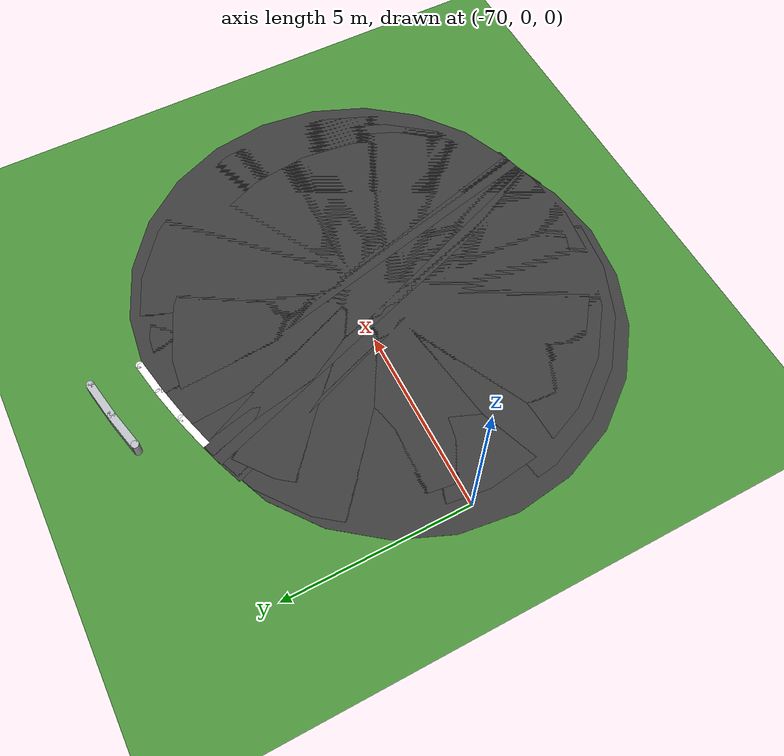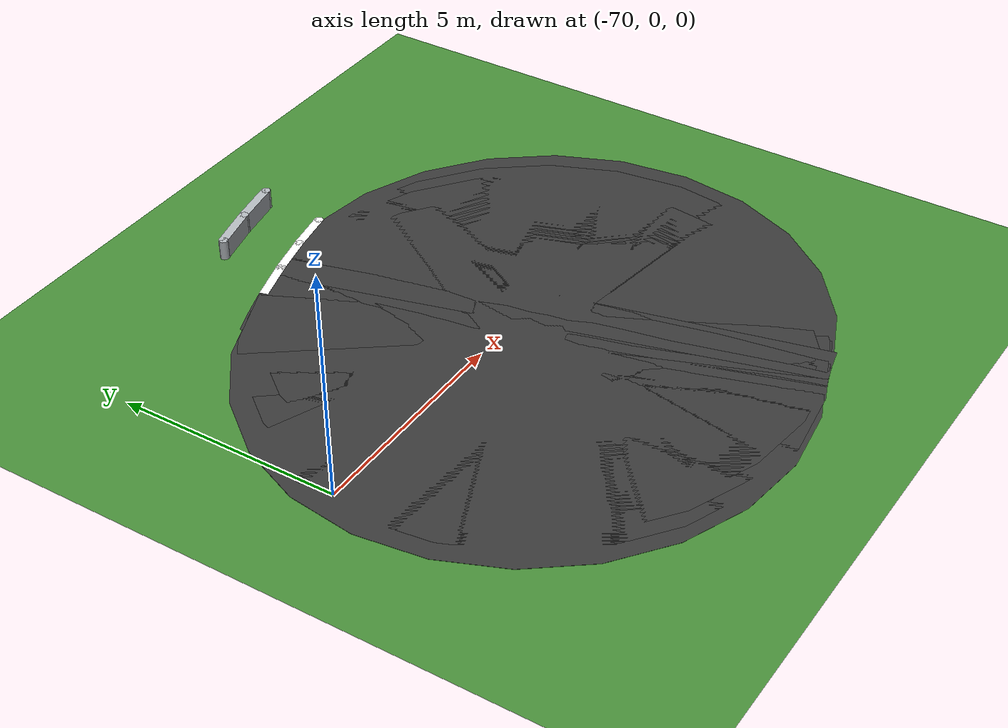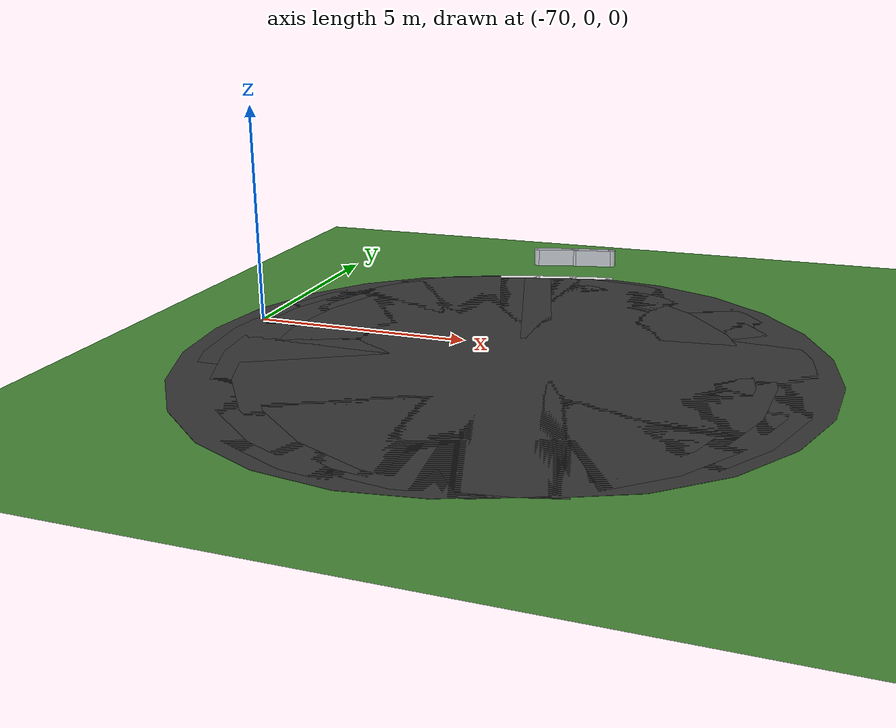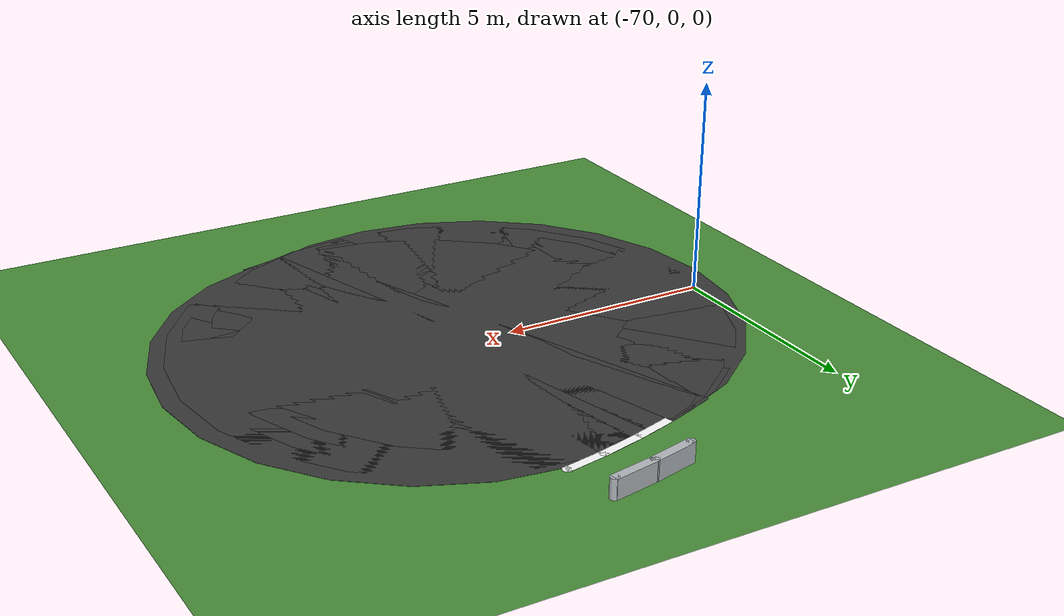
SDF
<sdf version="1.6">
 <world name="sem_silesia_ring_2026">
  <model name="ground_plane">
   <static>true</static>
   <link name="link">
    <collision name="collision">
     <geometry><plane><normal>0 0 1</normal><size>600 600</size></plane></geometry>
     <surface><friction><ode><mu>0.6</mu><mu2>0.6</mu2></ode></friction></surface>
    </collision>
    <visual name="visual">
     <geometry><plane><normal>0 0 1</normal><size>600 600</size></plane></geometry>
     <material><ambient>0.28 0.55 0.22 1</ambient><diffuse>0.28 0.55 0.22 1</diffuse></material>
    </visual>
   </link>
  </model>
  <model name="road_L_s6">
   <static>true</static>
   <pose>-62.8119 -0.3204 0.0030 0 0 3.3685</pose>
   <link name="link">
    <visual name="v">
     <geometry><box><size>0.6957 12.0000 0.0060</size></box></geometry>
     <material><ambient>0.22 0.22 0.22 1</ambient><diffuse>0.22 0.22 0.22 1</diffuse></material>
    </visual>
    <collision name="c">
     <geometry><box><size>0.6957 12.0000 0.0060</size></box></geometry>
     <surface><friction><ode><mu>0.9</mu><mu2>0.9</mu2></ode></friction></surface>
    </collision>
   </link>
  </model>
  <model name="road_L_jnt7">
   <static>true</static>
   <pose>-63.0240 -0.3713 0.0030 0 0 0</pose>
   <link name="link">
    <visual name="v">
     <geometry><cylinder><radius>6.0000</radius><length>0.0060</length></cylinder></geometry>
     <material><ambient>0.22 0.22 0.22 1</ambient><diffuse>0.22 0.22 0.22 1</diffuse></material>
    </visual>
    <collision name="c">
     <geometry><cylinder><radius>6.0000</radius><length>0.0060</length></cylinder></geometry>
     <surface><friction><ode><mu>0.9</mu><mu2>0.9</mu2></ode></friction></surface>
    </collision>
   </link>
  </model>
  <model name="road_L_s7">
   <static>true</static>
   <pose>-63.2352 -0.4259 0.0030 0 0 3.4034</pose>
   <link name="link">
    <visual name="v">
     <geometry><box><size>0.6957 12.0000 0.0060</size></box></geometry>
     <material><ambient>0.22 0.22 0.22 1</ambient><diffuse>0.22 0.22 0.22 1</diffuse></material>
    </visual>
    <collision name="c">
     <geometry><box><size>0.6957 12.0000 0.0060</size></box></geometry>
     <surface><friction><ode><mu>0.9</mu><mu2>0.9</mu2></ode></friction></surface>
    </collision>
   </link>
  </model>
  <model name="road_L_jnt8">
   <static>true</static>
   <pose>-63.4455 -0.4842 0.0030 0 0 0</pose>
   <link name="link">
    <visual name="v">
     <geometry><cylinder><radius>6.0000</radius><length>0.0060</length></cylinder></geometry>
     <material><ambient>0.22 0.22 0.22 1</ambient><diffuse>0.22 0.22 0.22 1</diffuse></material>
    </visual>
    <collision name="c">
     <geometry><cylinder><radius>6.0000</radius><length>0.0060</length></cylinder></geometry>
     <surface><friction><ode><mu>0.9</mu><mu2>0.9</mu2></ode></friction></surface>
    </collision>
   </link>
  </model>
  <model name="road_L_s8">
   <static>true</static>
   <pose>-63.6546 -0.5462 0.0030 0 0 3.4383</pose>
   <link name="link">
    <visual name="v">
     <geometry><box><size>0.6957 12.0000 0.0060</size></box></geometry>
     <material><ambient>0.22 0.22 0.22 1</ambient><diffuse>0.22 0.22 0.22 1</diffuse></material>
    </visual>
    <collision name="c">
     <geometry><box><size>0.6957 12.0000 0.0060</size></box></geometry>
     <surface><friction><ode><mu>0.9</mu><mu2>0.9</mu2></ode></friction></surface>
    </collision>
   </link>
  </model>
  <model name="road_L_jnt9">
   <static>true</static>
   <pose>-63.8627 -0.6118 0.0030 0 0 0</pose>
   <link name="link">
    <visual name="v">
     <geometry><cylinder><radius>6.0000</radius><length>0.0060</length></cylinder></geometry>
     <material><ambient>0.22 0.22 0.22 1</ambient><diffuse>0.22 0.22 0.22 1</diffuse></material>
    </visual>
    <collision name="c">
     <geometry><cylinder><radius>6.0000</radius><length>0.0060</length></cylinder></geometry>
     <surface><friction><ode><mu>0.9</mu><mu2>0.9</mu2></ode></friction></surface>
    </collision>
   </link>
  </model>
  <model name="road_L_s9">
   <static>true</static>
   <pose>-64.0696 -0.6810 0.0030 0 0 3.4732</pose>
   <link name="link">
    <visual name="v">
     <geometry><box><size>0.6957 12.0000 0.0060</size></box></geometry>
     <material><ambient>0.22 0.22 0.22 1</ambient><diffuse>0.22 0.22 0.22 1</diffuse></material>
    </visual>
    <collision name="c">
     <geometry><box><size>0.6957 12.0000 0.0060</size></box></geometry>
     <surface><friction><ode><mu>0.9</mu><mu2>0.9</mu2></ode></friction></surface>
    </collision>
   </link>
  </model>
  <model name="road_L_jnt10">
   <static>true</static>
   <pose>-64.2753 -0.7538 0.0030 0 0 0</pose>
   <link name="link">
    <visual name="v">
     <geometry><cylinder><radius>6.0000</radius><length>0.0060</length></cylinder></geometry>
     <material><ambient>0.22 0.22 0.22 1</ambient><diffuse>0.22 0.22 0.22 1</diffuse></material>
    </visual>
    <collision name="c">
     <geometry><cylinder><radius>6.0000</radius><length>0.0060</length></cylinder></geometry>
     <surface><friction><ode><mu>0.9</mu><mu2>0.9</mu2></ode></friction></surface>
    </collision>
   </link>
  </model>
  <model name="road_L_s10">
   <static>true</static>
   <pose>-64.4796 -0.8302 0.0030 0 0 3.5081</pose>
   <link name="link">
    <visual name="v">
     <geometry><box><size>0.6957 12.0000 0.0060</size></box></geometry>
     <material><ambient>0.22 0.22 0.22 1</ambient><diffuse>0.22 0.22 0.22 1</diffuse></material>
    </visual>
    <collision name="c">
     <geometry><box><size>0.6957 12.0000 0.0060</size></box></geometry>
     <surface><friction><ode><mu>0.9</mu><mu2>0.9</mu2></ode></friction></surface>
    </collision>
   </link>
  </model>
  <model name="road_L_jnt11">
   <static>true</static>
   <pose>-64.6826 -0.9102 0.0030 0 0 0</pose>
   <link name="link">
    <visual name="v">
     <geometry><cylinder><radius>6.0000</radius><length>0.0060</length></cylinder></geometry>
     <material><ambient>0.22 0.22 0.22 1</ambient><diffuse>0.22 0.22 0.22 1</diffuse></material>
    </visual>
    <collision name="c">
     <geometry><cylinder><radius>6.0000</radius><length>0.0060</length></cylinder></geometry>
     <surface><friction><ode><mu>0.9</mu><mu2>0.9</mu2></ode></friction></surface>
    </collision>
   </link>
  </model>
  <model name="wl_Lo_jnt3">
   <static>true</static>
   <pose>-62.8784 5.6735 0.0050 0 0 0</pose>
   <link name="link">
    <visual name="v">
     <geometry><cylinder><radius>0.1000</radius><length>0.0040</length></cylinder></geometry>
     <material><ambient>1 1 1 1</ambient><diffuse>1 1 1 1</diffuse></material>
    </visual>
    <collision name="c">
     <geometry><cylinder><radius>0.1000</radius><length>0.0040</length></cylinder></geometry>
     <surface><friction><ode><mu>0.9</mu><mu2>0.9</mu2></ode></friction></surface>
    </collision>
   </link>
  </model>
  <model name="wl_Lo_s3">
   <static>true</static>
   <pose>-63.3531 5.5919 0.0050 0 0 3.3249</pose>
   <link name="link">
    <visual name="v">
     <geometry><box><size>1.0185 0.2000 0.0040</size></box></geometry>
     <material><ambient>1 1 1 1</ambient><diffuse>1 1 1 1</diffuse></material>
    </visual>
    <collision name="c">
     <geometry><box><size>1.0185 0.2000 0.0040</size></box></geometry>
     <surface><friction><ode><mu>0.9</mu><mu2>0.9</mu2></ode></friction></surface>
    </collision>
   </link>
  </model>
  <model name="wl_Lo_jnt4">
   <static>true</static>
   <pose>-63.8256 5.4979 0.0050 0 0 0</pose>
   <link name="link">
    <visual name="v">
     <geometry><cylinder><radius>0.1000</radius><length>0.0040</length></cylinder></geometry>
     <material><ambient>1 1 1 1</ambient><diffuse>1 1 1 1</diffuse></material>
    </visual>
    <collision name="c">
     <geometry><cylinder><radius>0.1000</radius><length>0.0040</length></cylinder></geometry>
     <surface><friction><ode><mu>0.9</mu><mu2>0.9</mu2></ode></friction></surface>
    </collision>
   </link>
  </model>
  <model name="wl_Lo_s4">
   <static>true</static>
   <pose>-64.2954 5.3916 0.0050 0 0 3.3772</pose>
   <link name="link">
    <visual name="v">
     <geometry><box><size>1.0185 0.2000 0.0040</size></box></geometry>
     <material><ambient>1 1 1 1</ambient><diffuse>1 1 1 1</diffuse></material>
    </visual>
    <collision name="c">
     <geometry><box><size>1.0185 0.2000 0.0040</size></box></geometry>
     <surface><friction><ode><mu>0.9</mu><mu2>0.9</mu2></ode></friction></surface>
    </collision>
   </link>
  </model>
  <model name="wl_Lo_jnt5">
   <static>true</static>
   <pose>-64.7623 5.2730 0.0050 0 0 0</pose>
   <link name="link">
    <visual name="v">
     <geometry><cylinder><radius>0.1000</radius><length>0.0040</length></cylinder></geometry>
     <material><ambient>1 1 1 1</ambient><diffuse>1 1 1 1</diffuse></material>
    </visual>
    <collision name="c">
     <geometry><cylinder><radius>0.1000</radius><length>0.0040</length></cylinder></geometry>
     <surface><friction><ode><mu>0.9</mu><mu2>0.9</mu2></ode></friction></surface>
    </collision>
   </link>
  </model>
  <model name="wl_Lo_s5">
   <static>true</static>
   <pose>-65.2259 5.1423 0.0050 0 0 3.4296</pose>
   <link name="link">
    <visual name="v">
     <geometry><box><size>1.0185 0.2000 0.0040</size></box></geometry>
     <material><ambient>1 1 1 1</ambient><diffuse>1 1 1 1</diffuse></material>
    </visual>
    <collision name="c">
     <geometry><box><size>1.0185 0.2000 0.0040</size></box></geometry>
     <surface><friction><ode><mu>0.9</mu><mu2>0.9</mu2></ode></friction></surface>
    </collision>
   </link>
  </model>
  <model name="arm_Lo_jnt3">
   <static>true</static>
   <pose>-63.0818 6.9575 0.2250 0 0 0</pose>
   <link name="link">
    <visual name="v">
     <geometry><cylinder><radius>0.1000</radius><length>0.4500</length></cylinder></geometry>
     <material><ambient>0.70 0.72 0.74 1</ambient><diffuse>0.70 0.72 0.74 1</diffuse></material>
    </visual>
    <collision name="c">
     <geometry><cylinder><radius>0.1000</radius><length>0.4500</length></cylinder></geometry>
     <surface><friction><ode><mu>0.9</mu><mu2>0.9</mu2></ode></friction></surface>
    </collision>
   </link>
  </model>
  <model name="arm_Lo_s3">
   <static>true</static>
   <pose>-63.5900 6.8701 0.2250 0 0 3.3249</pose>
   <link name="link">
    <visual name="v">
     <geometry><box><size>1.0866 0.2000 0.4500</size></box></geometry>
     <material><ambient>0.70 0.72 0.74 1</ambient><diffuse>0.70 0.72 0.74 1</diffuse></material>
    </visual>
    <collision name="c">
     <geometry><box><size>1.0866 0.2000 0.4500</size></box></geometry>
     <surface><friction><ode><mu>0.9</mu><mu2>0.9</mu2></ode></friction></surface>
    </collision>
   </link>
  </model>
  <model name="arm_Lo_jnt4">
   <static>true</static>
   <pose>-64.0959 6.7695 0.2250 0 0 0</pose>
   <link name="link">
    <visual name="v">
     <geometry><cylinder><radius>0.1000</radius><length>0.4500</length></cylinder></geometry>
     <material><ambient>0.70 0.72 0.74 1</ambient><diffuse>0.70 0.72 0.74 1</diffuse></material>
    </visual>
    <collision name="c">
     <geometry><cylinder><radius>0.1000</radius><length>0.4500</length></cylinder></geometry>
     <surface><friction><ode><mu>0.9</mu><mu2>0.9</mu2></ode></friction></surface>
    </collision>
   </link>
  </model>
  <model name="arm_Lo_s4">
   <static>true</static>
   <pose>-64.5989 6.6557 0.2250 0 0 3.3772</pose>
   <link name="link">
    <visual name="v">
     <geometry><box><size>1.0866 0.2000 0.4500</size></box></geometry>
     <material><ambient>0.70 0.72 0.74 1</ambient><diffuse>0.70 0.72 0.74 1</diffuse></material>
    </visual>
    <collision name="c">
     <geometry><box><size>1.0866 0.2000 0.4500</size></box></geometry>
     <surface><friction><ode><mu>0.9</mu><mu2>0.9</mu2></ode></friction></surface>
    </collision>
   </link>
  </model>
  <model name="arm_Lo_jnt5">
   <static>true</static>
   <pose>-65.0987 6.5287 0.2250 0 0 0</pose>
   <link name="link">
    <visual name="v">
     <geometry><cylinder><radius>0.1000</radius><length>0.4500</length></cylinder></geometry>
     <material><ambient>0.70 0.72 0.74 1</ambient><diffuse>0.70 0.72 0.74 1</diffuse></material>
    </visual>
    <collision name="c">
     <geometry><cylinder><radius>0.1000</radius><length>0.4500</length></cylinder></geometry>
     <surface><friction><ode><mu>0.9</mu><mu2>0.9</mu2></ode></friction></surface>
    </collision>
   </link>
  </model>
 </world>
</sdf>
